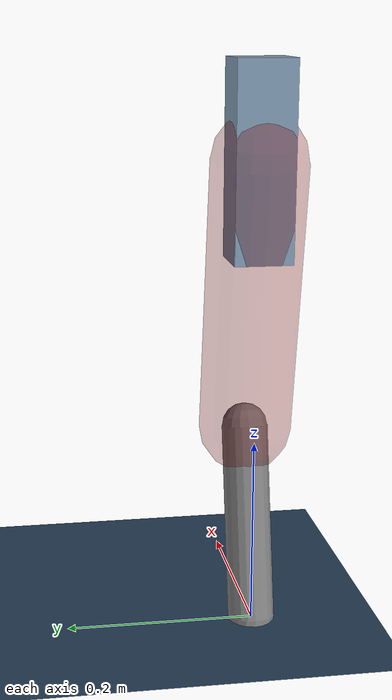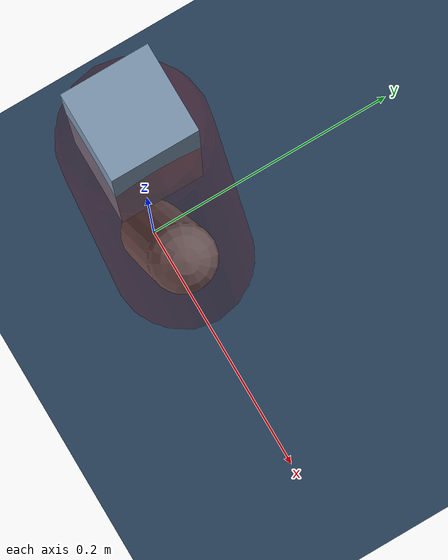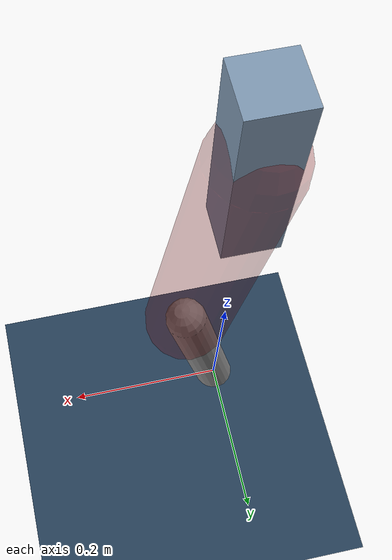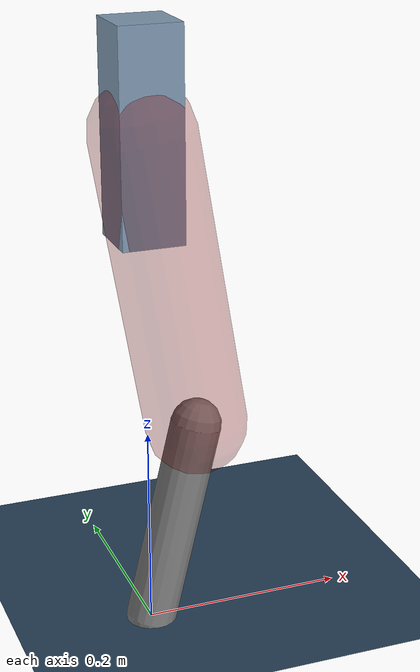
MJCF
<mujoco model="Hopper2D">
	<compiler inertiafromgeom="true" angle="radian" />
	<option timestep="0.001" integrator="implicit" cone="elliptic" solver="Newton" tolerance="1e-10" />

	<default>
		<geom contype="1" conaffinity="1" condim="3" friction="2 0.005 0.0001" solref="0.005 1" />
		<joint limited="true" damping="0.1" />
	</default>

	<asset>
		<texture name="skybox" type="skybox" builtin="gradient" rgb1=".4 .6 .8" rgb2="0 0 0" width="800" height="800" />
		<texture name="grid" type="2d" builtin="checker" rgb1=".1 .2 .3" rgb2=".2 .3 .4" width="300" height="300" mark="edge" markrgb=".2 .3 .4" />
		<material name="ground" texture="grid" texrepeat="1 1" texuniform="true" reflectance="0.1" />
		<material name="leg" rgba="0.5 0.6 0.7 1" />
	</asset>

	<worldbody>

		<geom name="floor" type="plane" size="5 5 0.25" material="ground" />

		<light directional="false" diffuse="0.8 0.8 0.8" specular="0.3 0.3 0.3" pos="0 0 2" dir="0 0 -1" />
		<light mode="targetbodycom" target="base" directional="false" diffuse="0.8 0.8 0.8" specular="0.3 0.3 0.3" pos="0 0 2" dir="0 0 -1" />

		<camera name="fixed" pos="0 -2 1" xyaxes="1 0 0 0 0 1" />
		<camera name="tracking" mode="trackcom" pos="0 -3 1" />

		<body name="root" pos="0 0 0.4962219137166638">
			<joint name="slide_x" type="slide" axis="1 0 0" range="-100 100" />
			<joint name="slide_z" type="slide" axis="0 0 1" range="0 10" />

			<body name="base" pos="0 0 0">
				<geom name="torso" type="box" size="0.03 0.03 0.1" mass="2.864" material="leg" />

				<body name="link1" pos="0 0 0" euler="0 1.4035934344142165 0">
					<joint type="hinge" axis="0 -1 0" pos="0 0 0" name="hinge1" limited="true" range="-3.14 3.14" stiffness="0" damping="0.1" />
					<geom name="thigh" type="capsule" fromto="0 0 0 0.2962261509082704 0 0" size="0.05" rgba="0.5 0 0 0.3" mass="0.9785106074523302" />

					<body name="link2" pos="0.2962261509082704 0 0" euler="0 0.40417848937268064 0">
						<joint type="hinge" axis="0 -1 0" pos="0 0 0" name="hinge2" limited="true" range="-3.14 3.14" stiffness="0" damping="0.1" />
						<geom name="shank" type="capsule" fromto="0 0 0 0.20999576280839338 0 0" size="0.025" mass="0.4092966102467147" />

					</body>
				</body>
			</body>
		</body>
	</worldbody>

	<actuator>
		<motor name="torque1" joint="hinge1" ctrlrange="-77.33913587784873 77.33913587784873" ctrllimited="true" gear="1" />
		<motor name="torque2" joint="hinge2" ctrlrange="-112.84682244758616 112.84682244758616" ctrllimited="true" gear="1" />
	</actuator>
</mujoco>
